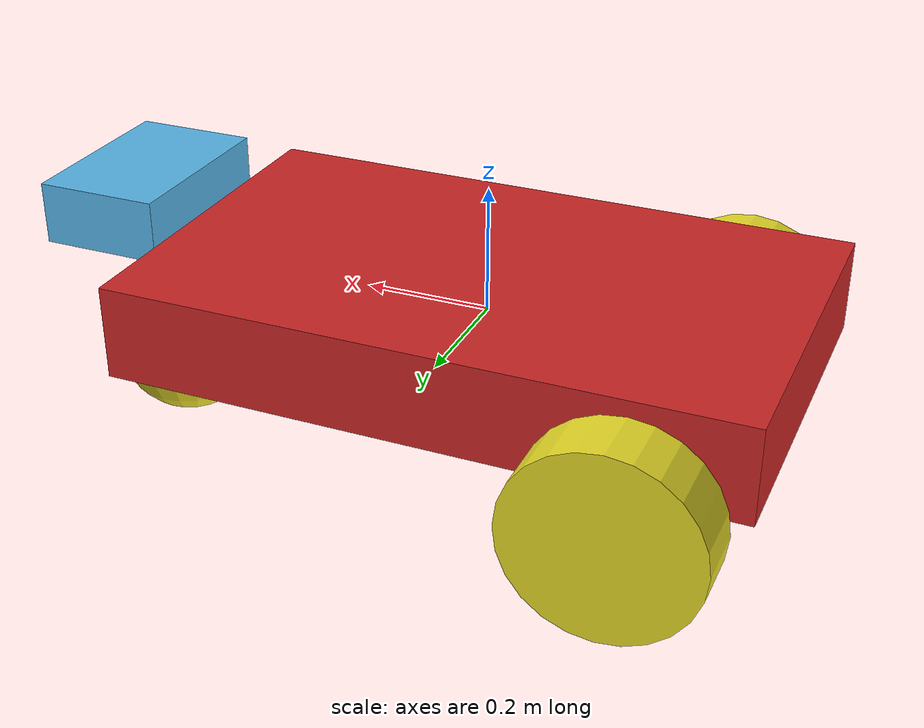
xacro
<?xml version="1.0"?>

<robot name="robot_description"
    xmlns:xacro="https://www.ros.org/wiki/xacro">

    <!-- base dimensions -->
    <xacro:property name="base_link_x_dim" value="1" />
    <xacro:property name="base_link_y_dim" value="0.6" />
    <xacro:property name="base_link_z_dim" value="0.3" />
    <xacro:property name="wheel_density" value="2710.0"/>
    <xacro:property name="wheel_link_radius" value="0.15"/>
    <xacro:property name="I_wheel" value="0.01"/>
    <xacro:property name="Iz_wheel" value="0.01"/>
    <!-- Pi constant -->
    <xacro:property name="pi_const" value="3.14159265" />
    <!-- Wheel dimensions -->
    <xacro:property name="wheel_link_radius" value="0.15" />
    <xacro:property name="wheel_link_length" value="0.1" />
    <xacro:property name="wheel_link_z_location" value="-0.1" />
    <xacro:property name="wheel_mass" value="${wheel_density*pi_const*wheel_link_radius*wheel_link_radius*wheel_link_length}"/>
    <xacro:property name="wheel3_mass" value="${wheel_density*pi_const*0.12*0.12*0.12}"/>
    <xacro:include filename="$(find new_pkg)/urdf/new_gazebo.gazebo" />

    <!-- This macro defines the complete inertial section of the wheel -->
    <xacro:macro name="inertia_wheel">
        <inertial>
            <origin rpy="0 0 0" xyz="0 0 0"/>
            <mass value="${wheel_mass}"/>
            <inertia ixx="${I_wheel}" ixy="0.0" ixz="0.0" iyy="${I_wheel}" iyz="0.0" izz="${Iz_wheel}"/>
        </inertial>
    </xacro:macro>

    <xacro:macro name="inertia_wheel1">
        <inertial>
            <origin rpy="0 0 0" xyz="0 0 0"/>
            <mass value="${wheel3_mass}"/>
            <inertia ixx="${I_wheel}" ixy="0.0" ixz="0.0" iyy="${I_wheel}" iyz="0.0" izz="${Iz_wheel}"/>
        </inertial>
    </xacro:macro>

    <!--baselink-->
    <link name="base_link">
        <inertial>
            <mass value="10.0"/>
            <!-- Adjust mass as appropriate -->
            <origin xyz="0 0 0" rpy="0 0 0"/>
            <inertia ixx="0.5" ixy="0.0" ixz="0.0" iyy="0.5" iyz="0.0" izz="0.5"/>
        </inertial>

        <visual>
            <geometry>
                <box size="${base_link_x_dim} ${base_link_y_dim} ${base_link_z_dim/2}" />
            </geometry>
            <origin rpy="0 0 0" xyz="0 0 0" />
        </visual>

        <collision>
            <geometry>
                <box size="${base_link_x_dim} ${base_link_y_dim} ${base_link_z_dim/2}" />
            </geometry>
            <origin rpy="0 0 0" xyz="0 0 0" />
        </collision>
    </link>

    <!--Camera/sensor link-->
    <joint name="camera_joint" type="fixed">
        <parent link="base_link" />
        <child link="camera_link" />
        <origin xyz="0.3 0 0.05" rpy="0 0 0"/> <!-- slight downward tilt -->
    </joint>
    <link name="camera_link">
        <visual>
            <origin xyz="0.3 0 0.05" rpy="0 0 0"/> <!-- slight downward tilt -->
            <geometry>
                <box size="0.2 0.3 0.1" />
            </geometry>
        </visual>
        <collision>
            <origin xyz="0.5 0 0.15" rpy="0 0 0"/> <!-- slight downward tilt -->
            <geometry>
                <box size="0.2 0.3 0.1" />
            </geometry>
        </collision>
    </link>

    <!-- Back Right wheel of the robot and the joint -->
    <joint name="wheel1_joint" type="continuous">
        <parent link="base_link" />
        <child link="wheel1_link" />
        <origin xyz="${-base_link_x_dim/2+1.2*wheel_link_radius} ${-base_link_y_dim/2-wheel_link_length/2} ${wheel_link_z_location}" rpy="0 0 0" />
        <axis xyz="0 1 0" />
        <limit effort="1000" velocity="1000" />
        <dynamics damping="1.0" friction="1.0" />
    </joint>

    <link name="wheel1_link">
        <visual>
            <origin rpy="1.570795 0 0" xyz="0 0 0" />
            <geometry>
                <cylinder length="${wheel_link_length}" radius="${wheel_link_radius}" />
            </geometry>
        </visual>
        <collision>
            <origin rpy="1.570795 0 0" xyz="0 0 0" />
            <geometry>
                <cylinder length="${wheel_link_length}" radius="${wheel_link_radius}" />
            </geometry>
        </collision>
        <xacro:inertia_wheel />
    </link>

    <!-- Back Left wheel -->
    <joint name="wheel2_joint" type="continuous">
        <parent link="base_link" />
        <child link="wheel2_link" />
        <origin xyz="${-base_link_x_dim/2+1.2*wheel_link_radius} ${base_link_y_dim/2+wheel_link_length/2} ${wheel_link_z_location}" rpy="0 0 0"/>
        <axis xyz="0 1 0" />
        <limit effort="1000" velocity="1000" />
        <dynamics damping="1.0" friction="1.0" />
    </joint>

    <link name="wheel2_link">
        <visual>
            <origin rpy="1.570795 0 0" xyz="0 0 0" />
            <geometry>
                <cylinder length="${wheel_link_length}" radius="${wheel_link_radius}" />
            </geometry>
        </visual>

        <collision>
            <origin rpy="1.570795 0 0" xyz="0 0 0" />
            <geometry>
                <cylinder length="${wheel_link_length}" radius="${wheel_link_radius}" />
            </geometry>
        </collision>
        <xacro:inertia_wheel />
    </link>

    <!-- Front supporting wheel -->
    <joint name="wheel3_joint" type="fixed">
        <parent link="base_link" />
        <child link="wheel3_link" />
        <origin xyz="${base_link_x_dim/2 + wheel_link_length/2} 0 -0.17" rpy="0 0 0"/>
    </joint>

    <link name="wheel3_link">
        <visual>
            <origin rpy="0 0 0" xyz="0 0 0" />
            <geometry>
                <sphere radius="0.12" />
            </geometry>
        </visual>

        <collision>
            <origin rpy="0 0 0" xyz="0 0 0" />
            <geometry>
                <sphere radius="0.12" />
            </geometry>
        </collision>
        <xacro:inertia_wheel1 />
    </link>

</robot>
